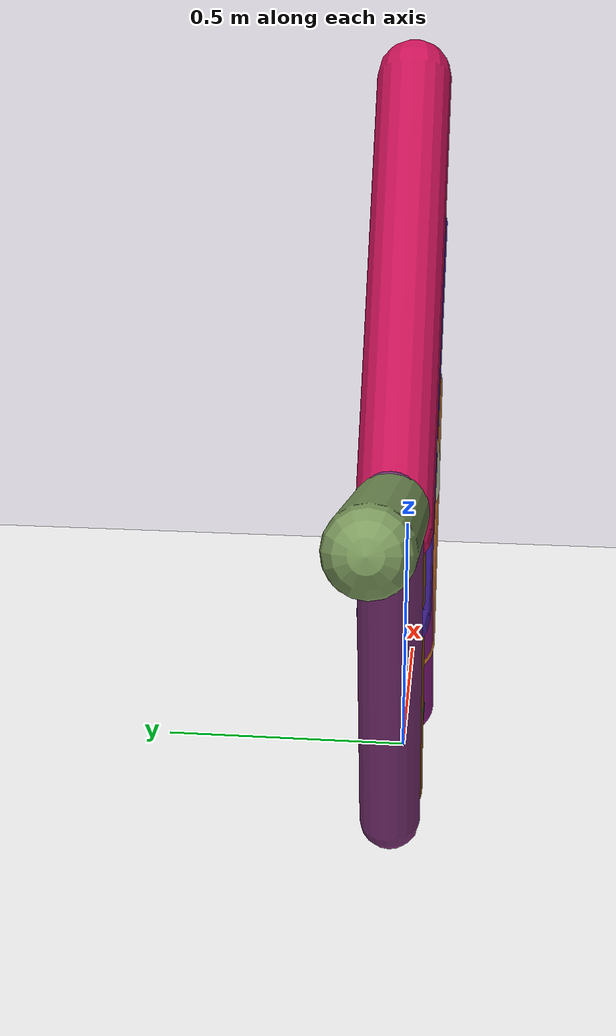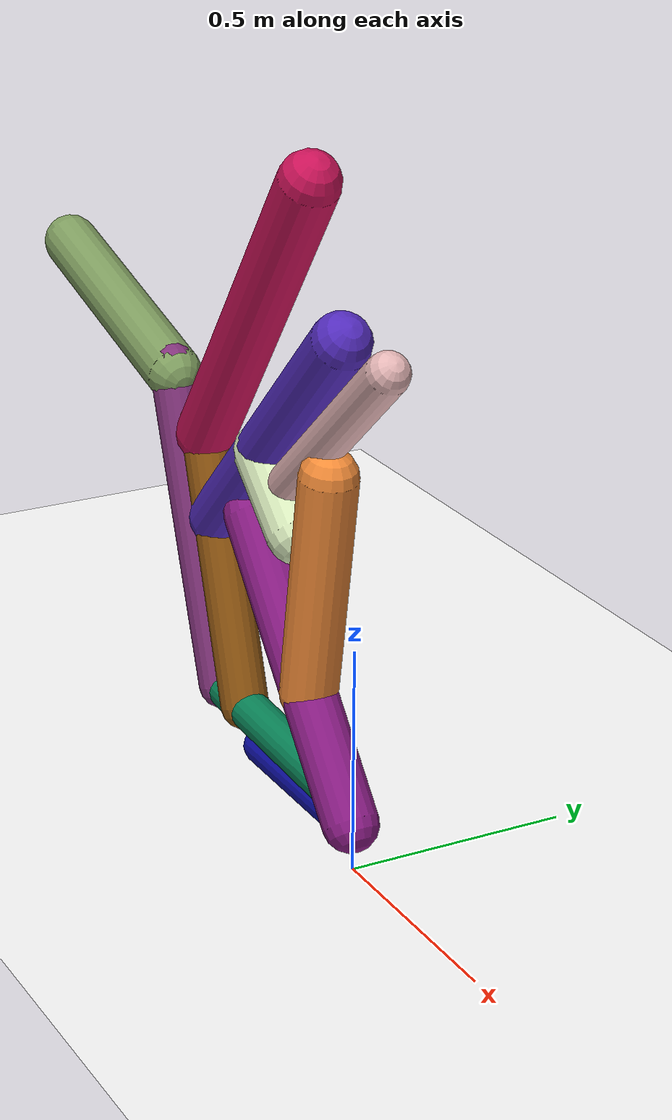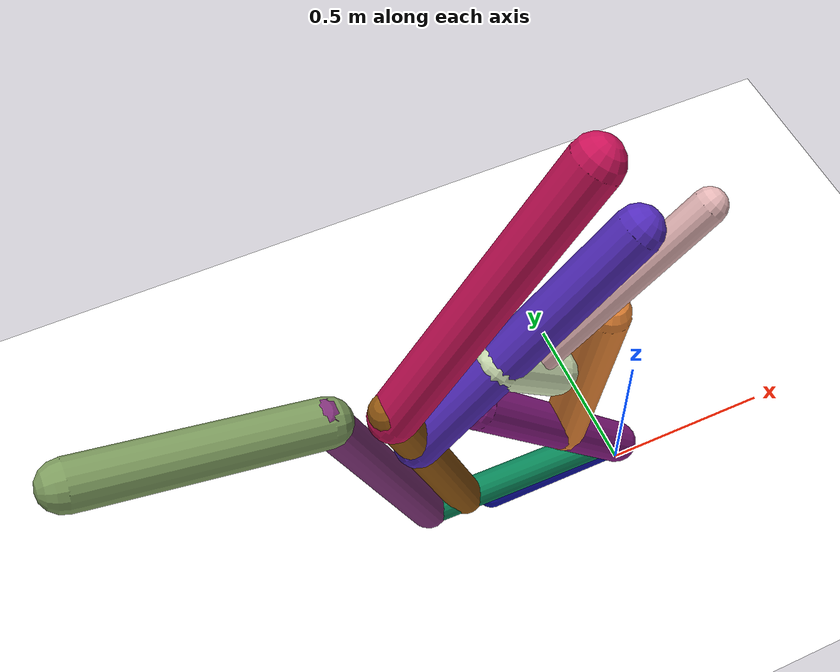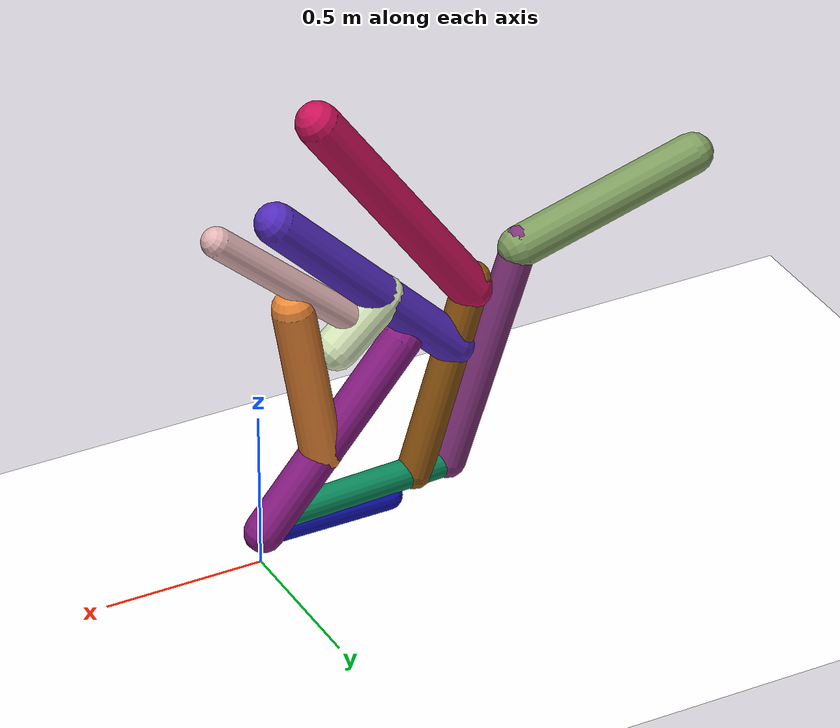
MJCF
<mujoco model="morphology">
  <option timestep="0.01"/>
  <default>
    <default class="/"/>
    <default class="0/"/>
    <default class="0/1/"/>
    <default class="0/1/2/"/>
    <default class="0/1/3/"/>
    <default class="0/1/3/4/"/>
    <default class="0/1/3/4/5/"/>
    <default class="0/1/3/6/"/>
    <default class="0/1/3/6/7/"/>
    <default class="0/1/3/6/7/8/"/>
    <default class="0/1/3/6/7/8/9/"/>
    <default class="0/1/3/6/10/"/>
  </default>
  <asset>
    <texture name="texplane" type="2d" builtin="checker" rgb1="0.10000000000000001 0.20000000000000001 0.29999999999999999" rgb2="0.20000000000000001 0.29999999999999999 0.40000000000000002" width="300" height="300"/>
    <material name="MatPlane" class="/" texture="texplane" texrepeat="20 20" specular="1" shininess="1" reflectance="0.5"/>
  </asset>
  <worldbody>
    <light name="//unnamed_light_0" class="/" directional="true" pos="0 0 1.5" dir="0 0 -1.3" cutoff="100" exponent="1" diffuse="1 1 1" specular="0.10000000000000001 0.10000000000000001 0.10000000000000001"/>
    <geom name="ground" class="/" type="plane" size="15 15 0.5" material="MatPlane" rgba="1 1 1 1"/>
    <site name="body" class="/" size="9.9999999999999995e-07 9.9999999999999995e-07 9.9999999999999995e-07" pos="0 0 0.10041928730206565"/>
    <body pos="0 0 0.10041928730206565" name="0/">
      <joint name="0/rootx/" class="/" type="slide" axis="1 0 0" limited="false" stiffness="0" armature="0" damping="0"/>
      <joint name="0/rootz/" class="/" type="slide" axis="0 0 1" limited="false" stiffness="0" armature="0" damping="0"/>
      <joint name="0/rooty/" class="/" type="hinge" axis="0 1 0" limited="false" stiffness="0" armature="0" damping="0"/>
      <geom name="0/geom" class="0/" type="capsule" contype="1" conaffinity="1" condim="3" size="0.041643089898176874" rgba="0.063476060771523679 0.070686585151067738 0.66882846643782534 1" friction="0.59999999999999998 0.10000000000000001 0.10000000000000001" fromto="0 0 0 -0.42476459054537824 0 -0.00041928731280260756"/>
      <site name="0/end0" class="0/" size="0.0050000000000000001" pos="-0.42476459054537824 0 -0.00041928731280260756"/>
      <site name="0/attach1" class="0/" size="9.9999999999999995e-07 9.9999999999999995e-07 9.9999999999999995e-07" pos="-0.011931141477853959 0 -1.1777291140238504e-05"/>
      <body pos="-0.011931141477853959 0 -1.1777291140238504e-05" name="0/1/">
        <joint name="0/1/joint/" class="0/" type="hinge" axis="0 1 0" limited="true" range="-44.980280355101669 44.980280355101669"/>
        <geom name="0/1/geom" class="0/1/" type="capsule" contype="1" conaffinity="1" condim="3" size="0.061221304492329431" rgba="0.53469218731387891 0.10728481030429216 0.51513261863799564 1" friction="0.59999999999999998 0.10000000000000001 0.10000000000000001" fromto="0 0 0 -0.45784297980146105 0 0.53615109105026848"/>
        <site name="0/1/end1" class="0/1/" size="0.0050000000000000001" pos="-0.45784297980146105 0 0.53615109105026848"/>
        <site name="0/1/attach2" class="0/1/" size="9.9999999999999995e-07 9.9999999999999995e-07 9.9999999999999995e-07" pos="-0.190722590250402 0 0.2233432188804744"/>
        <body pos="-0.190722590250402 0 0.2233432188804744" name="0/1/2/">
          <joint name="0/1/2/joint/" class="0/1/" type="hinge" axis="0 1 0" limited="true" range="-46.918928866515003 46.918928866515003"/>
          <geom name="0/1/2/geom" class="0/1/2/" type="capsule" contype="1" conaffinity="1" condim="3" size="0.063709202975514884" rgba="0.94895104482976145 0.54602698680155204 0.21950479427793135 1" friction="0.59999999999999998 0.10000000000000001 0.10000000000000001" fromto="0 0 0 0.087416853912741788 0 0.51563239704411989"/>
          <site name="0/1/2/end2" class="0/1/2/" size="0.0050000000000000001" pos="0.087416853912741788 0 0.51563239704411989"/>
        </body>
        <site name="0/1/attach3" class="0/1/" size="9.9999999999999995e-07 9.9999999999999995e-07 9.9999999999999995e-07" pos="-0.038079650326477935 0 0.044592681268602698"/>
        <body pos="-0.038079650326477935 0 0.044592681268602698" name="0/1/3/">
          <joint name="0/1/3/joint/" class="0/1/" type="hinge" axis="0 1 0" limited="true" range="-58.667017395274925 58.667017395274925"/>
          <geom name="0/1/3/geom" class="0/1/3/" type="capsule" contype="1" conaffinity="1" condim="3" size="0.045706771538654101" rgba="0.032818073384434432 0.51750797504531898 0.34229008115794635 1" friction="0.59999999999999998 0.10000000000000001 0.10000000000000001" fromto="0 0 0 -0.58140446235186349 0 0.020905049828331634"/>
          <site name="0/1/3/end3" class="0/1/3/" size="0.0050000000000000001" pos="-0.58140446235186349 0 0.020905049828331634"/>
          <site name="0/1/3/attach4" class="0/1/3/" size="9.9999999999999995e-07 9.9999999999999995e-07 9.9999999999999995e-07" pos="-0.57355761691001306 0 0.020622907695652535"/>
          <body pos="-0.57355761691001306 0 0.020622907695652535" name="0/1/3/4/">
            <joint name="0/1/3/4/joint/" class="0/1/3/" type="hinge" axis="0 1 0" limited="true" range="-69.502140965791739 69.502140965791739"/>
            <geom name="0/1/3/4/geom" class="0/1/3/4/" type="capsule" contype="1" conaffinity="1" condim="3" size="0.053938046943229637" rgba="0.51212427318752707 0.20282995969823903 0.4860269944472152 1" friction="0.59999999999999998 0.10000000000000001 0.10000000000000001" fromto="0 0 0 -0.23692271965155598 0 0.6857342752917126"/>
            <site name="0/1/3/4/end4" class="0/1/3/4/" size="0.0050000000000000001" pos="-0.23692271965155598 0 0.6857342752917126"/>
            <site name="0/1/3/4/attach5" class="0/1/3/4/" size="9.9999999999999995e-07 9.9999999999999995e-07 9.9999999999999995e-07" pos="-0.23214342954919492 0 0.67190139746736799"/>
            <body pos="-0.23214342954919492 0 0.67190139746736799" name="0/1/3/4/5/">
              <joint name="0/1/3/4/5/joint/" class="0/1/3/4/" type="hinge" axis="0 1 0" limited="true" range="-41.299685224608574 41.299685224608574"/>
              <geom name="0/1/3/4/5/geom" class="0/1/3/4/5/" type="capsule" contype="1" conaffinity="1" condim="3" size="0.063331450819700874" rgba="0.49655921921562196 0.61574890575766295 0.37288426246604967 1" friction="0.59999999999999998 0.10000000000000001 0.10000000000000001" fromto="0 0 0 -0.58148165933001272 0 0.15841186712158228"/>
              <site name="0/1/3/4/5/end5" class="0/1/3/4/5/" size="0.0050000000000000001" pos="-0.58148165933001272 0 0.15841186712158228"/>
            </body>
          </body>
          <site name="0/1/3/attach6" class="0/1/3/" size="9.9999999999999995e-07 9.9999999999999995e-07 9.9999999999999995e-07" pos="-0.46088925588375179 0 0.016571790351621884"/>
          <body pos="-0.46088925588375179 0 0.016571790351621884" name="0/1/3/6/">
            <geom name="0/1/3/6/geom" class="0/1/3/6/" type="capsule" contype="1" conaffinity="1" condim="3" size="0.054272575633173434" rgba="0.58059098260563369 0.34749454278595182 0.069599838735738828 1" friction="0.59999999999999998 0.10000000000000001 0.10000000000000001" fromto="0 0 0 -0.19226337687202022 0 0.6109613469719366"/>
            <site name="0/1/3/6/end6" class="0/1/3/6/" size="0.0050000000000000001" pos="-0.19226337687202022 0 0.6109613469719366"/>
            <site name="0/1/3/6/attach7" class="0/1/3/6/" size="9.9999999999999995e-07 9.9999999999999995e-07 9.9999999999999995e-07" pos="-0.12778777775416611 0 0.40607521876204861"/>
            <body pos="-0.12778777775416611 0 0.40607521876204861" name="0/1/3/6/7/">
              <joint name="0/1/3/6/7/joint/" class="0/1/3/6/" type="hinge" axis="0 1 0" limited="true" range="-32.011434963177727 32.011434963177727"/>
              <geom name="0/1/3/6/7/geom" class="0/1/3/6/7/" type="capsule" contype="1" conaffinity="1" condim="3" size="0.063887455261722376" rgba="0.32335897412034487 0.17119217869635928 0.7387203862020868 1" friction="0.59999999999999998 0.10000000000000001 0.10000000000000001" fromto="0 0 0 0.57399019382439165 0 0.57149365004427821"/>
              <site name="0/1/3/6/7/end7" class="0/1/3/6/7/" size="0.0050000000000000001" pos="0.57399019382439165 0 0.57149365004427821"/>
              <site name="0/1/3/6/7/attach8" class="0/1/3/6/7/" size="9.9999999999999995e-07 9.9999999999999995e-07 9.9999999999999995e-07" pos="0.23243080749711911 0 0.23141986045829008"/>
              <body pos="0.23243080749711911 0 0.23141986045829008" name="0/1/3/6/7/8/">
                <joint name="0/1/3/6/7/8/joint/" class="0/1/3/6/7/" type="hinge" axis="0 1 0" limited="true" range="-59.625890852153276 59.625890852153276"/>
                <geom name="0/1/3/6/7/8/geom" class="0/1/3/6/7/8/" type="capsule" contype="1" conaffinity="1" condim="3" size="0.06664322310534862" rgba="0.8432256609673574 0.91278496290842581 0.73480505744458369 1" friction="0.59999999999999998 0.10000000000000001 0.10000000000000001" fromto="0 0 0 0.15063161675961889 0 -0.13230773507449167"/>
                <site name="0/1/3/6/7/8/end8" class="0/1/3/6/7/8/" size="0.0050000000000000001" pos="0.15063161675961889 0 -0.13230773507449167"/>
                <site name="0/1/3/6/7/8/attach9" class="0/1/3/6/7/8/" size="9.9999999999999995e-07 9.9999999999999995e-07 9.9999999999999995e-07" pos="0.076663457933863713 0 -0.067337579589248908"/>
                <body pos="0.076663457933863713 0 -0.067337579589248908" name="0/1/3/6/7/8/9/">
                  <joint name="0/1/3/6/7/8/9/joint/" class="0/1/3/6/7/8/" type="hinge" axis="0 1 0" limited="true" range="-69.672087181128504 69.672087181128504"/>
                  <geom name="0/1/3/6/7/8/9/geom" class="0/1/3/6/7/8/9/" type="capsule" contype="1" conaffinity="1" condim="3" size="0.046069424144662433" rgba="0.8885725331262555 0.70717065191740724 0.70756957053927749 1" friction="0.59999999999999998 0.10000000000000001 0.10000000000000001" fromto="0 0 0 0.45266809087431392 0 0.39959511074908871"/>
                  <site name="0/1/3/6/7/8/9/end9" class="0/1/3/6/7/8/9/" size="0.0050000000000000001" pos="0.45266809087431392 0 0.39959511074908871"/>
                </body>
              </body>
            </body>
            <site name="0/1/3/6/attach10" class="0/1/3/6/" size="9.9999999999999995e-07 9.9999999999999995e-07 9.9999999999999995e-07" pos="-0.18400260529846402 0 0.5847108347333686"/>
            <body pos="-0.18400260529846402 0 0.5847108347333686" name="0/1/3/6/10/">
              <joint name="0/1/3/6/10/joint/" class="0/1/3/6/" type="hinge" axis="0 1 0" limited="true" range="-41.805937997122513 41.805937997122513"/>
              <geom name="0/1/3/6/10/geom" class="0/1/3/6/10/" type="capsule" contype="1" conaffinity="1" condim="3" size="0.066341098791899575" rgba="0.79284580132620297 0.069394227777551554 0.34670709990914783 1" friction="0.59999999999999998 0.10000000000000001 0.10000000000000001" fromto="0 0 0 0.494175044742859 0 0.68377422058123472"/>
              <site name="0/1/3/6/10/end10" class="0/1/3/6/10/" size="0.0050000000000000001" pos="0.494175044742859 0 0.68377422058123472"/>
            </body>
          </body>
        </body>
      </body>
      <camera name="0/side" class="0/" mode="trackcom" pos="0.40000000000000002 -4 0.20000000000000001" quat="0.70699999999999996 0.70699999999999996 0 0"/>
    </body>
  </worldbody>
  <actuator>
    <motor name="0/1/motor" class="0/1/" ctrllimited="true" ctrlrange="-1 1" gear="60" joint="0/1/joint/"/>
    <motor name="0/1/2/motor" class="0/1/2/" ctrllimited="true" ctrlrange="-1 1" gear="81" joint="0/1/2/joint/"/>
    <motor name="0/1/3/motor" class="0/1/3/" ctrllimited="true" ctrlrange="-1 1" gear="78" joint="0/1/3/joint/"/>
    <motor name="0/1/3/4/motor" class="0/1/3/4/" ctrllimited="true" ctrlrange="-1 1" gear="61" joint="0/1/3/4/joint/"/>
    <motor name="0/1/3/4/5/motor" class="0/1/3/4/5/" ctrllimited="true" ctrlrange="-1 1" gear="72" joint="0/1/3/4/5/joint/"/>
    <motor name="0/1/3/6/7/motor" class="0/1/3/6/7/" ctrllimited="true" ctrlrange="-1 1" gear="65" joint="0/1/3/6/7/joint/"/>
    <motor name="0/1/3/6/7/8/motor" class="0/1/3/6/7/8/" ctrllimited="true" ctrlrange="-1 1" gear="51" joint="0/1/3/6/7/8/joint/"/>
    <motor name="0/1/3/6/7/8/9/motor" class="0/1/3/6/7/8/9/" ctrllimited="true" ctrlrange="-1 1" gear="87" joint="0/1/3/6/7/8/9/joint/"/>
    <motor name="0/1/3/6/10/motor" class="0/1/3/6/10/" ctrllimited="true" ctrlrange="-1 1" gear="64" joint="0/1/3/6/10/joint/"/>
  </actuator>
  <sensor>
    <subtreelinvel name="velocity" body="0/"/>
  </sensor>
</mujoco>
